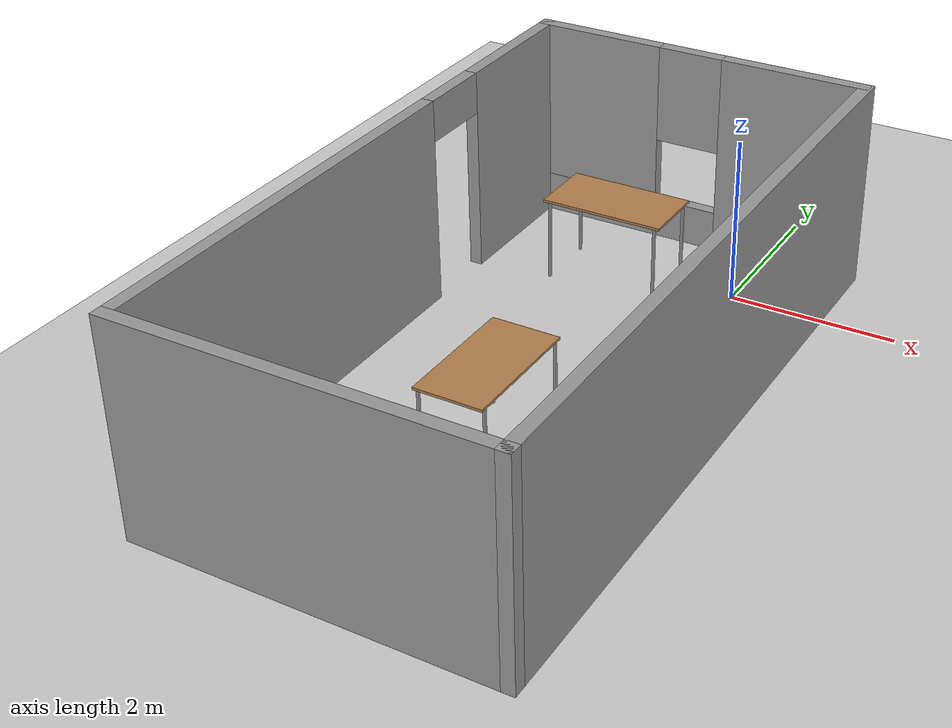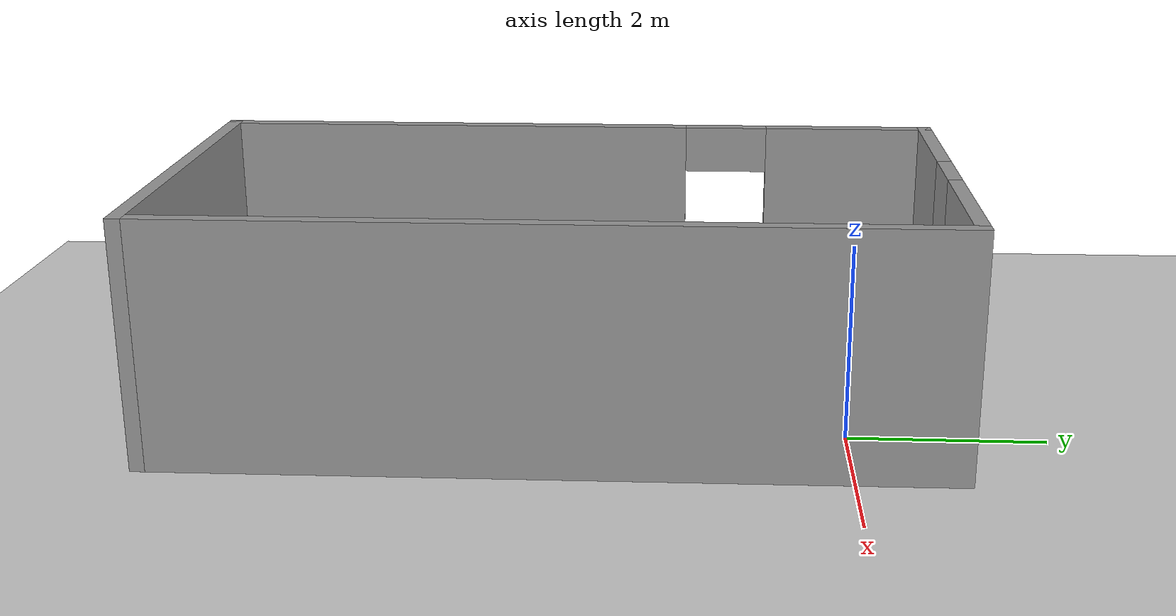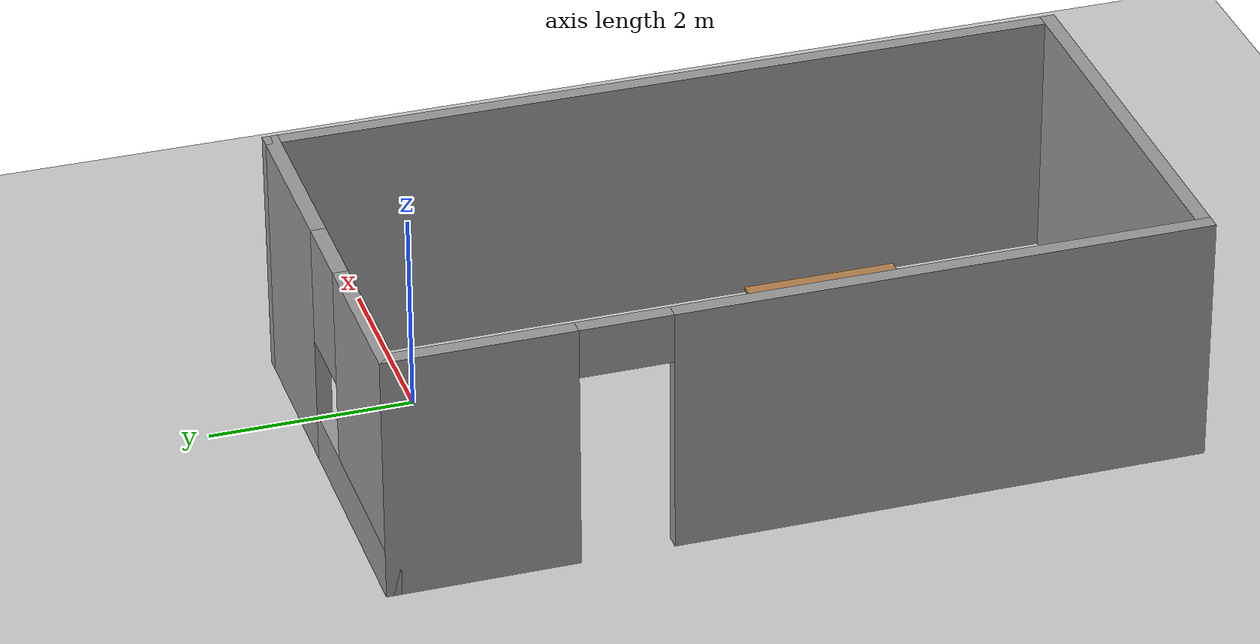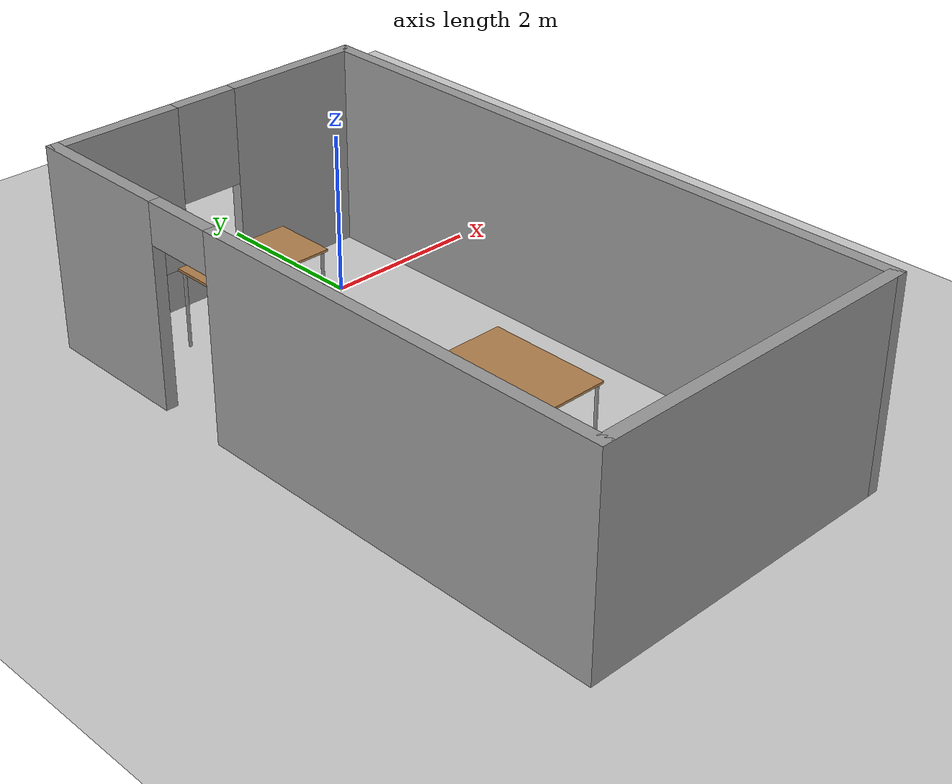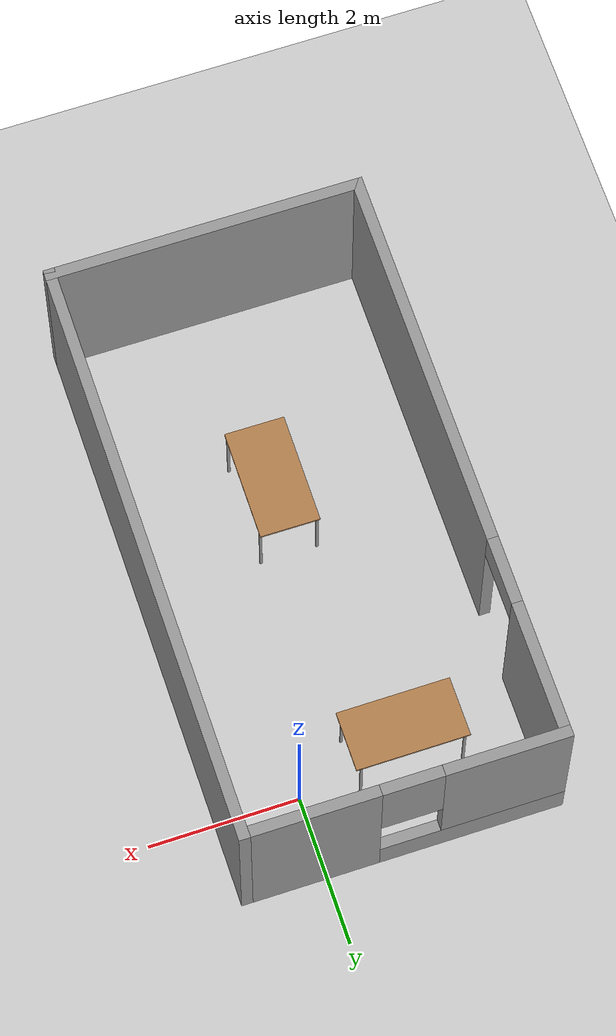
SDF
<sdf version="1.7">
 <world name="default">
  <light name="sun" type="directional">
   <pose>0 0 10 0 -0 0</pose>
   <diffuse>0.8 0.8 0.8 1</diffuse>
   <specular>0.2 0.2 0.2 1</specular>
   <attenuation>
    <range>1000</range>
    <constant>0.9</constant>
    <linear>0.01</linear>
    <quadratic>0.001</quadratic>
   </attenuation>
   <direction>-0.5 0.1 -0.9</direction>
   <spot><inner_angle>0</inner_angle><outer_angle>0</outer_angle><falloff>0</falloff></spot>
  </light>
  <model name="ground_plane">
   <static>1</static>
   <link name="link">
    <collision name="collision">
     <geometry><plane><normal>0 0 1</normal><size>100 100</size></plane></geometry>
     <surface>
      <contact><collide_bitmask>65535</collide_bitmask></contact>
      <friction><ode><mu>100</mu><mu2>50</mu2></ode></friction>
     </surface>
    </collision>
    <visual name="visual">
     <cast_shadows>0</cast_shadows>
     <geometry><plane><normal>0 0 1</normal><size>100 100</size></plane></geometry>
     <material>
      <script><uri>file://media/materials/scripts/gazebo.material</uri><name>Gazebo/Grey</name></script>
     </material>
    </visual>
   </link>
  </model>
  <gravity>0 0 -9.8</gravity>
  <magnetic_field>6e-06 2.3e-05 -4.2e-05</magnetic_field>
  <atmosphere type="adiabatic"/>
  <physics type="ode">
   <max_step_size>0.001</max_step_size>
   <real_time_factor>1</real_time_factor>
   <real_time_update_rate>1000</real_time_update_rate>
  </physics>
  <scene><ambient>0.4 0.4 0.4 1</ambient><background>0.7 0.7 0.7 1</background><shadows>1</shadows></scene>
  <spherical_coordinates>
   <surface_model>EARTH_WGS84</surface_model>
   <latitude_deg>0</latitude_deg>
   <longitude_deg>0</longitude_deg>
   <elevation>0</elevation>
   <heading_deg>0</heading_deg>
  </spherical_coordinates>
  <model name="Robot_house">
   <pose>-0.216482 -2.8919 0 0 -0 -1.57214</pose>
   <link name="Wall_6">
    <pose>-3.925 -0.786408 0 0 -0 -1.5708</pose>
    <visual name="Wall_6_Visual_0">
     <pose>-1.2175 0 1.25 0 -0 0</pose>
     <geometry><box><size>1.815 0.15 2.5</size></box></geometry>
     <material>
      <script><uri>file://media/materials/scripts/gazebo.material</uri><name>Gazebo/Grey</name></script>
      <ambient>1 1 1 1</ambient>
     </material>
     <meta><layer>0</layer></meta>
    </visual>
    <collision name="Wall_6_Collision_0">
     <geometry><box><size>1.815 0.15 2.5</size></box></geometry>
     <pose>-1.2175 0 1.25 0 -0 0</pose>
    </collision>
    <visual name="Wall_6_Visual_1">
     <pose>0.9075 0 0.25 0 -0 0</pose>
     <geometry><box><size>2.435 0.15 0.5</size></box></geometry>
     <material>
      <script><uri>file://media/materials/scripts/gazebo.material</uri><name>Gazebo/Grey</name></script>
      <ambient>1 1 1 1</ambient>
     </material>
     <meta><layer>0</layer></meta>
    </visual>
    <collision name="Wall_6_Collision_1">
     <geometry><box><size>2.435 0.15 0.5</size></box></geometry>
     <pose>0.9075 0 0.25 0 -0 0</pose>
    </collision>
    <visual name="Wall_6_Visual_2">
     <pose>1.3075 0 1.5 0 -0 0</pose>
     <geometry><box><size>1.635 0.15 2</size></box></geometry>
     <material>
      <script><uri>file://media/materials/scripts/gazebo.material</uri><name>Gazebo/Grey</name></script>
      <ambient>1 1 1 1</ambient>
     </material>
     <meta><layer>0</layer></meta>
    </visual>
    <collision name="Wall_6_Collision_2">
     <geometry><box><size>1.635 0.15 2</size></box></geometry>
     <pose>1.3075 0 1.5 0 -0 0</pose>
    </collision>
    <visual name="Wall_6_Visual_3">
     <pose>0.09 0 1.9 0 -0 0</pose>
     <geometry><box><size>0.8 0.15 1.2</size></box></geometry>
     <material>
      <script><uri>file://media/materials/scripts/gazebo.material</uri><name>Gazebo/Grey</name></script>
      <ambient>1 1 1 1</ambient>
     </material>
     <meta><layer>0</layer></meta>
    </visual>
    <collision name="Wall_6_Collision_3">
     <geometry><box><size>0.8 0.15 1.2</size></box></geometry>
     <pose>0.09 0 1.9 0 -0 0</pose>
    </collision>
   </link>
   <link name="Wall_7">
    <pose>0 -2.83641 0 0 -0 0</pose>
    <visual name="Wall_7_Visual_0">
     <pose>-3.0725 0 1.25 0 -0 0</pose>
     <geometry><box><size>1.855 0.15 2.5</size></box></geometry>
     <material>
      <script><uri>file://media/materials/scripts/gazebo.material</uri><name>Gazebo/Grey</name></script>
      <ambient>1 1 1 1</ambient>
     </material>
     <meta><layer>0</layer></meta>
    </visual>
    <collision name="Wall_7_Collision_0">
     <geometry><box><size>1.855 0.15 2.5</size></box></geometry>
     <pose>-3.0725 0 1.25 0 -0 0</pose>
    </collision>
    <visual name="Wall_7_Visual_1">
     <pose>1.3775 0 1.25 0 -0 0</pose>
     <geometry><box><size>5.245 0.15 2.5</size></box></geometry>
     <material>
      <script><uri>file://media/materials/scripts/gazebo.material</uri><name>Gazebo/Grey</name></script>
      <ambient>1 1 1 1</ambient>
     </material>
     <meta><layer>0</layer></meta>
    </visual>
    <collision name="Wall_7_Collision_1">
     <geometry><box><size>5.245 0.15 2.5</size></box></geometry>
     <pose>1.3775 0 1.25 0 -0 0</pose>
    </collision>
    <visual name="Wall_7_Visual_2">
     <pose>-1.695 0 2.25 0 -0 0</pose>
     <geometry><box><size>0.9 0.15 0.5</size></box></geometry>
     <material>
      <script><uri>file://media/materials/scripts/gazebo.material</uri><name>Gazebo/Grey</name></script>
      <ambient>1 1 1 1</ambient>
     </material>
     <meta><layer>0</layer></meta>
    </visual>
    <collision name="Wall_7_Collision_2">
     <geometry><box><size>0.9 0.15 0.5</size></box></geometry>
     <pose>-1.695 0 2.25 0 -0 0</pose>
    </collision>
   </link>
   <link name="Wall_8">
    <collision name="Wall_8_Collision">
     <geometry><box><size>4.25 0.15 2.5</size></box></geometry>
     <pose>0 0 1.25 0 -0 0</pose>
    </collision>
    <visual name="Wall_8_Visual">
     <pose>0 0 1.25 0 -0 0</pose>
     <geometry><box><size>4.25 0.15 2.5</size></box></geometry>
     <material>
      <script><uri>file://media/materials/scripts/gazebo.material</uri><name>Gazebo/Grey</name></script>
      <ambient>1 1 1 1</ambient>
     </material>
     <meta><layer>0</layer></meta>
    </visual>
    <pose>3.925 -0.786408 0 0 -0 1.5708</pose>
   </link>
   <link name="Wall_9">
    <collision name="Wall_9_Collision">
     <geometry><box><size>8 0.15 2.5</size></box></geometry>
     <pose>0 0 1.25 0 -0 0</pose>
    </collision>
    <visual name="Wall_9_Visual">
     <pose>0 0 1.25 0 -0 0</pose>
     <geometry><box><size>8 0.15 2.5</size></box></geometry>
     <material>
      <script><uri>file://media/materials/scripts/gazebo.material</uri><name>Gazebo/Grey</name></script>
      <ambient>1 1 1 1</ambient>
     </material>
     <meta><layer>0</layer></meta>
    </visual>
    <pose>0 1.26359 0 0 -0 3.14159</pose>
   </link>
   <static>1</static>
  </model>
  <model name="table">
   <static>1</static>
   <link name="link">
    <collision name="surface">
     <pose>0 0 1 0 -0 0</pose>
     <geometry><box><size>1.5 0.8 0.03</size></box></geometry>
     <surface><friction><ode><mu>0.6</mu><mu2>0.6</mu2></ode></friction></surface>
    </collision>
    <visual name="visual1">
     <pose>0 0 1 0 -0 0</pose>
     <geometry><box><size>1.5 0.8 0.03</size></box></geometry>
     <material>
      <script><uri>file://media/materials/scripts/gazebo.material</uri><name>Gazebo/Wood</name></script>
     </material>
    </visual>
    <collision name="front_left_leg">
     <pose>0.68 0.38 0.5 0 -0 0</pose>
     <geometry><cylinder><radius>0.02</radius><length>1</length></cylinder></geometry>
    </collision>
    <visual name="front_left_leg">
     <pose>0.68 0.38 0.5 0 -0 0</pose>
     <geometry><cylinder><radius>0.02</radius><length>1</length></cylinder></geometry>
     <material>
      <script><uri>file://media/materials/scripts/gazebo.material</uri><name>Gazebo/Grey</name></script>
     </material>
    </visual>
    <collision name="front_right_leg">
     <pose>0.68 -0.38 0.5 0 -0 0</pose>
     <geometry><cylinder><radius>0.02</radius><length>1</length></cylinder></geometry>
    </collision>
    <visual name="front_right_leg">
     <pose>0.68 -0.38 0.5 0 -0 0</pose>
     <geometry><cylinder><radius>0.02</radius><length>1</length></cylinder></geometry>
     <material>
      <script><uri>file://media/materials/scripts/gazebo.material</uri><name>Gazebo/Grey</name></script>
     </material>
    </visual>
    <collision name="back_right_leg">
     <pose>-0.68 -0.38 0.5 0 -0 0</pose>
     <geometry><cylinder><radius>0.02</radius><length>1</length></cylinder></geometry>
    </collision>
    <visual name="back_right_leg">
     <pose>-0.68 -0.38 0.5 0 -0 0</pose>
     <geometry><cylinder><radius>0.02</radius><length>1</length></cylinder></geometry>
     <material>
      <script><uri>file://media/materials/scripts/gazebo.material</uri><name>Gazebo/Grey</name></script>
     </material>
    </visual>
    <collision name="back_left_leg">
     <pose>-0.68 0.38 0.5 0 -0 0</pose>
     <geometry><cylinder><radius>0.02</radius><length>1</length></cylinder></geometry>
    </collision>
    <visual name="back_left_leg">
     <pose>-0.68 0.38 0.5 0 -0 0</pose>
     <geometry><cylinder><radius>0.02</radius><length>1</length></cylinder></geometry>
     <material>
      <script><uri>file://media/materials/scripts/gazebo.material</uri><name>Gazebo/Grey</name></script>
     </material>
    </visual>
   </link>
   <pose>-1.42955 -0.198988 0 0 -0 0</pose>
  </model>
  <model name="table_0">
   <static>1</static>
   <link name="link">
    <collision name="surface">
     <pose>0 0 1 0 -0 0</pose>
     <geometry><box><size>1.5 0.8 0.03</size></box></geometry>
     <surface><friction><ode><mu>0.6</mu><mu2>0.6</mu2></ode></friction></surface>
    </collision>
    <visual name="visual1">
     <pose>0 0 1 0 -0 0</pose>
     <geometry><box><size>1.5 0.8 0.03</size></box></geometry>
     <material>
      <script><uri>file://media/materials/scripts/gazebo.material</uri><name>Gazebo/Wood</name></script>
     </material>
    </visual>
    <collision name="front_left_leg">
     <pose>0.68 0.38 0.5 0 -0 0</pose>
     <geometry><cylinder><radius>0.02</radius><length>1</length></cylinder></geometry>
    </collision>
    <visual name="front_left_leg">
     <pose>0.68 0.38 0.5 0 -0 0</pose>
     <geometry><cylinder><radius>0.02</radius><length>1</length></cylinder></geometry>
     <material>
      <script><uri>file://media/materials/scripts/gazebo.material</uri><name>Gazebo/Grey</name></script>
     </material>
    </visual>
    <collision name="front_right_leg">
     <pose>0.68 -0.38 0.5 0 -0 0</pose>
     <geometry><cylinder><radius>0.02</radius><length>1</length></cylinder></geometry>
    </collision>
    <visual name="front_right_leg">
     <pose>0.68 -0.38 0.5 0 -0 0</pose>
     <geometry><cylinder><radius>0.02</radius><length>1</length></cylinder></geometry>
     <material>
      <script><uri>file://media/materials/scripts/gazebo.material</uri><name>Gazebo/Grey</name></script>
     </material>
    </visual>
    <collision name="back_right_leg">
     <pose>-0.68 -0.38 0.5 0 -0 0</pose>
     <geometry><cylinder><radius>0.02</radius><length>1</length></cylinder></geometry>
    </collision>
    <visual name="back_right_leg">
     <pose>-0.68 -0.38 0.5 0 -0 0</pose>
     <geometry><cylinder><radius>0.02</radius><length>1</length></cylinder></geometry>
     <material>
      <script><uri>file://media/materials/scripts/gazebo.material</uri><name>Gazebo/Grey</name></script>
     </material>
    </visual>
    <collision name="back_left_leg">
     <pose>-0.68 0.38 0.5 0 -0 0</pose>
     <geometry><cylinder><radius>0.02</radius><length>1</length></cylinder></geometry>
    </collision>
    <visual name="back_left_leg">
     <pose>-0.68 0.38 0.5 0 -0 0</pose>
     <geometry><cylinder><radius>0.02</radius><length>1</length></cylinder></geometry>
     <material>
      <script><uri>file://media/materials/scripts/gazebo.material</uri><name>Gazebo/Grey</name></script>
     </material>
    </visual>
   </link>
   <pose>-0.939146 -3.9099 0 0 0 -1.5772</pose>
  </model>
 </world>
</sdf>
